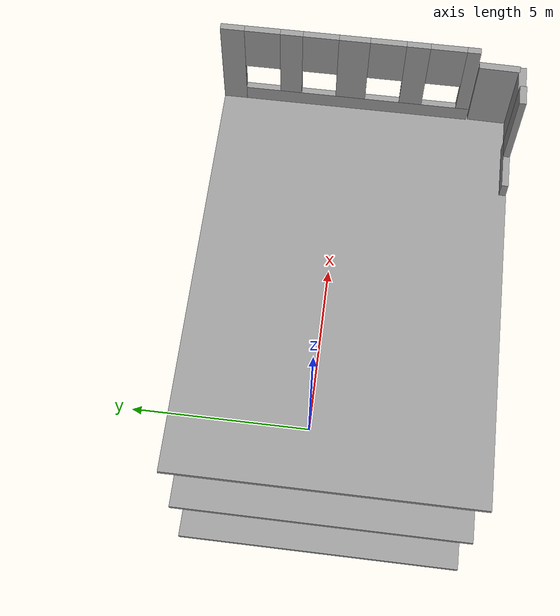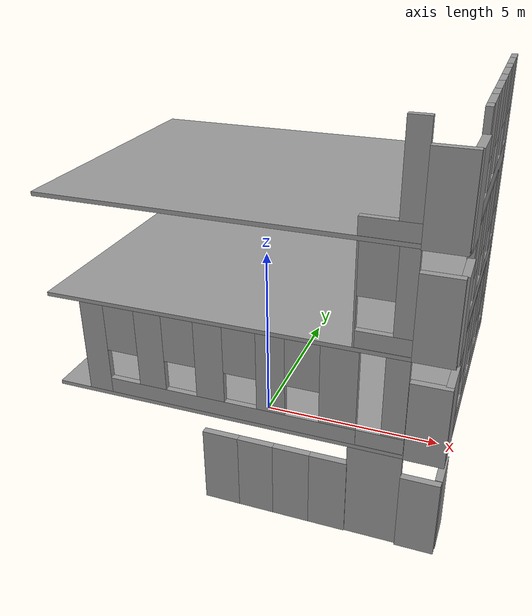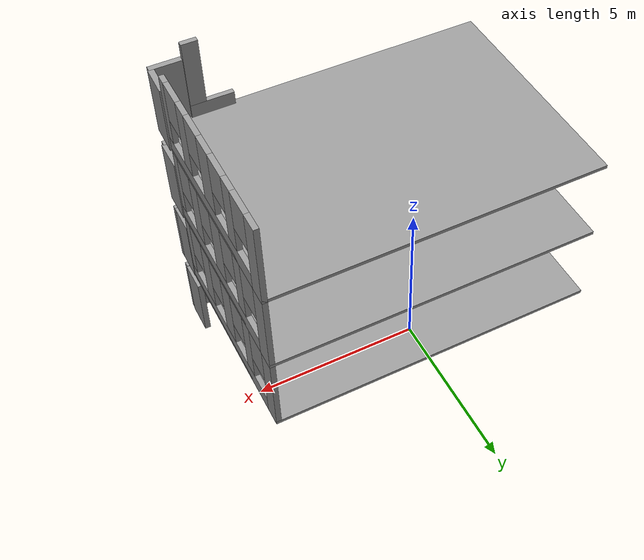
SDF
<sdf version="1.7">
 <model name="domitory">
  <pose>0.765108 -0.598707 0 0 -0 0</pose>
  <link name="Door_12">
   <collision name="Door_12_Collision">
    <geometry><box><size>0.9 0.17 2</size></box></geometry>
    <pose>0 0 1 0 -0 0</pose>
   </collision>
   <visual name="Door_12_Visual">
    <pose>0 0 1 0 -0 0</pose>
    <geometry><box><size>0.9 0.17 2</size></box></geometry>
    <material>
     <script><uri>file://media/materials/scripts/gazebo.material</uri><name>Gazebo/Grey</name></script>
    </material>
   </visual>
   <pose>4.35367 -3.32593 2.5 0 -0 0</pose>
  </link>
  <link name="Door_13">
   <collision name="Door_13_Collision">
    <geometry><box><size>0.9 0.17 2</size></box></geometry>
    <pose>0 0 1 0 -0 0</pose>
   </collision>
   <visual name="Door_13_Visual">
    <pose>0 0 1 0 -0 0</pose>
    <geometry><box><size>0.9 0.17 2</size></box></geometry>
    <material>
     <script><uri>file://media/materials/scripts/gazebo.material</uri><name>Gazebo/Grey</name></script>
    </material>
   </visual>
   <pose>4.71868 -2.83925 2.5 0 -0 1.56606</pose>
  </link>
  <link name="Door_16">
   <collision name="Door_16_Collision">
    <geometry><box><size>0.9 0.17 2</size></box></geometry>
    <pose>0 0 1 0 -0 0</pose>
   </collision>
   <visual name="Door_16_Visual">
    <pose>0 0 1 0 -0 0</pose>
    <geometry><box><size>0.9 0.17 2</size></box></geometry>
    <material>
     <script><uri>file://media/materials/scripts/gazebo.material</uri><name>Gazebo/Grey</name></script>
    </material>
   </visual>
   <pose>4.33718 -3.3042 5 0 -0 0</pose>
  </link>
  <link name="Door_17">
   <collision name="Door_17_Collision">
    <geometry><box><size>0.9 0.17 2</size></box></geometry>
    <pose>0 0 1 0 -0 0</pose>
   </collision>
   <visual name="Door_17_Visual">
    <pose>0 0 1 0 -0 0</pose>
    <geometry><box><size>0.9 0.17 2</size></box></geometry>
    <material>
     <script><uri>file://media/materials/scripts/gazebo.material</uri><name>Gazebo/Grey</name></script>
    </material>
   </visual>
   <pose>4.74951 -2.80136 5 0 -0 1.58063</pose>
  </link>
  <link name="Door_2">
   <collision name="Door_2_Collision">
    <geometry><box><size>0.9 0.17 2</size></box></geometry>
    <pose>0 0 1 0 -0 0</pose>
   </collision>
   <visual name="Door_2_Visual">
    <pose>0 0 1 0 -0 0</pose>
    <geometry><box><size>0.9 0.17 2</size></box></geometry>
    <material>
     <script><uri>file://media/materials/scripts/gazebo.material</uri><name>Gazebo/Grey</name></script>
    </material>
   </visual>
   <pose>-0.475108 -3.31129 0 0 -0 0</pose>
  </link>
  <link name="Door_20">
   <collision name="Door_20_Collision">
    <geometry><box><size>0.9 0.17 2</size></box></geometry>
    <pose>0 0 1 0 -0 0</pose>
   </collision>
   <visual name="Door_20_Visual">
    <pose>0 0 1 0 -0 0</pose>
    <geometry><box><size>0.9 0.17 2</size></box></geometry>
    <material>
     <script><uri>file://media/materials/scripts/gazebo.material</uri><name>Gazebo/Grey</name></script>
    </material>
   </visual>
   <pose>4.33688 -3.35533 7.5 0 -0 0</pose>
  </link>
  <link name="Door_21">
   <collision name="Door_21_Collision">
    <geometry><box><size>0.9 0.17 2</size></box></geometry>
    <pose>0 0 1 0 -0 0</pose>
   </collision>
   <visual name="Door_21_Visual">
    <pose>0 0 1 0 -0 0</pose>
    <geometry><box><size>0.9 0.17 2</size></box></geometry>
    <material>
     <script><uri>file://media/materials/scripts/gazebo.material</uri><name>Gazebo/Grey</name></script>
    </material>
   </visual>
   <pose>4.74144 -2.84964 7.5 0 -0 1.55325</pose>
  </link>
  <link name="Door_3">
   <collision name="Door_3_Collision">
    <geometry><box><size>0.9 0.17 2</size></box></geometry>
    <pose>0 0 1 0 -0 0</pose>
   </collision>
   <visual name="Door_3_Visual">
    <pose>0 0 1 0 -0 0</pose>
    <geometry><box><size>0.9 0.17 2</size></box></geometry>
    <material>
     <script><uri>file://media/materials/scripts/gazebo.material</uri><name>Gazebo/Grey</name></script>
    </material>
   </visual>
   <pose>0.414892 -3.31129 0 0 -0 0</pose>
  </link>
  <link name="Door_4">
   <collision name="Door_4_Collision">
    <geometry><box><size>0.9 0.17 2</size></box></geometry>
    <pose>0 0 1 0 -0 0</pose>
   </collision>
   <visual name="Door_4_Visual">
    <pose>0 0 1 0 -0 0</pose>
    <geometry><box><size>0.9 0.17 2</size></box></geometry>
    <material>
     <script><uri>file://media/materials/scripts/gazebo.material</uri><name>Gazebo/Grey</name></script>
    </material>
   </visual>
   <pose>1.30489 -3.31129 0 0 -0 0</pose>
  </link>
  <link name="Door_5">
   <collision name="Door_5_Collision">
    <geometry><box><size>0.9 0.17 2</size></box></geometry>
    <pose>0 0 1 0 -0 0</pose>
   </collision>
   <visual name="Door_5_Visual">
    <pose>0 0 1 0 -0 0</pose>
    <geometry><box><size>0.9 0.17 2</size></box></geometry>
    <material>
     <script><uri>file://media/materials/scripts/gazebo.material</uri><name>Gazebo/Grey</name></script>
    </material>
   </visual>
   <pose>2.20489 -3.31129 0 0 -0 0</pose>
  </link>
  <link name="Door_8">
   <collision name="Door_8_Collision">
    <geometry><box><size>0.9 0.17 2</size></box></geometry>
    <pose>0 0 1 0 -0 0</pose>
   </collision>
   <visual name="Door_8_Visual">
    <pose>0 0 1 0 -0 0</pose>
    <geometry><box><size>0.9 0.17 2</size></box></geometry>
    <material>
     <script><uri>file://media/materials/scripts/gazebo.material</uri><name>Gazebo/Grey</name></script>
    </material>
   </visual>
   <pose>4.33084 -3.34889 0 0 -0 0</pose>
  </link>
  <link name="Door_9">
   <collision name="Door_9_Collision">
    <geometry><box><size>0.9 0.17 2</size></box></geometry>
    <pose>0 0 1 0 -0 0</pose>
   </collision>
   <visual name="Door_9_Visual">
    <pose>0 0 1 0 -0 0</pose>
    <geometry><box><size>0.9 0.17 2</size></box></geometry>
    <material>
     <script><uri>file://media/materials/scripts/gazebo.material</uri><name>Gazebo/Grey</name></script>
    </material>
   </visual>
   <pose>4.71207 -2.79987 0 0 -0 1.57105</pose>
  </link>
  <link name="Floor_0">
   <collision name="Floor_0_Collision">
    <geometry><box><size>9.59773 6.77259 0.1</size></box></geometry>
    <pose>0 0 0.05 0 -0 0</pose>
   </collision>
   <visual name="Floor_0_Visual">
    <pose>0 0 0.05 0 -0 0</pose>
    <geometry><box><size>9.59773 6.77259 0.1</size></box></geometry>
    <material>
     <script><uri>file://media/materials/scripts/gazebo.material</uri><name>Gazebo/Grey</name></script>
     <ambient>1 1 1 1</ambient>
    </material>
    <meta><layer>1</layer></meta>
   </visual>
   <pose>-0 -0 2.5 0 -0 0</pose>
  </link>
  <link name="Floor_1">
   <collision name="Floor_1_Collision">
    <geometry><box><size>9.59773 6.77259 0.1</size></box></geometry>
    <pose>0 0 0.05 0 -0 0</pose>
   </collision>
   <visual name="Floor_1_Visual">
    <pose>0 0 0.05 0 -0 0</pose>
    <geometry><box><size>9.59773 6.77259 0.1</size></box></geometry>
    <material>
     <script><uri>file://media/materials/scripts/gazebo.material</uri><name>Gazebo/Grey</name></script>
     <ambient>1 1 1 1</ambient>
    </material>
    <meta><layer>2</layer></meta>
   </visual>
   <pose>-0 -0 5 0 -0 0</pose>
  </link>
  <link name="Floor_2">
   <collision name="Floor_2_Collision">
    <geometry><box><size>9.59773 6.77259 0.1</size></box></geometry>
    <pose>0 0 0.05 0 -0 0</pose>
   </collision>
   <visual name="Floor_2_Visual">
    <pose>0 0 0.05 0 -0 0</pose>
    <geometry><box><size>9.59773 6.77259 0.1</size></box></geometry>
    <material>
     <script><uri>file://media/materials/scripts/gazebo.material</uri><name>Gazebo/Grey</name></script>
     <ambient>1 1 1 1</ambient>
    </material>
    <meta><layer>3</layer></meta>
   </visual>
   <pose>-0 -0 7.5 0 -0 0</pose>
  </link>
  <link name="Wall_12">
   <pose>4.72386 0.511293 2.5 0 -0 -1.5708</pose>
   <visual name="Wall_12_Visual_0">
    <pose>-2.61219 0 1.25 0 -0 0</pose>
    <geometry><box><size>0.525622 0.15 2.5</size></box></geometry>
    <material>
     <script><uri>file://media/materials/scripts/gazebo.material</uri><name>Gazebo/Grey</name></script>
     <ambient>1 1 1 1</ambient>
    </material>
    <meta><layer>1</layer></meta>
   </visual>
   <collision name="Wall_12_Collision_0">
    <geometry><box><size>0.525622 0.15 2.5</size></box></geometry>
    <pose>-2.61219 0 1.25 0 -0 0</pose>
   </collision>
   <visual name="Wall_12_Visual_1">
    <pose>0.262811 0 0.25 0 -0 0</pose>
    <geometry><box><size>5.22438 0.15 0.5</size></box></geometry>
    <material>
     <script><uri>file://media/materials/scripts/gazebo.material</uri><name>Gazebo/Grey</name></script>
     <ambient>1 1 1 1</ambient>
    </material>
    <meta><layer>1</layer></meta>
   </visual>
   <collision name="Wall_12_Collision_1">
    <geometry><box><size>5.22438 0.15 0.5</size></box></geometry>
    <pose>0.262811 0 0.25 0 -0 0</pose>
   </collision>
   <visual name="Wall_12_Visual_2">
    <pose>-1.31329 0 1.5 0 -0 0</pose>
    <geometry><box><size>0.472183 0.15 2</size></box></geometry>
    <material>
     <script><uri>file://media/materials/scripts/gazebo.material</uri><name>Gazebo/Grey</name></script>
     <ambient>1 1 1 1</ambient>
    </material>
    <meta><layer>1</layer></meta>
   </visual>
   <collision name="Wall_12_Collision_2">
    <geometry><box><size>0.472183 0.15 2</size></box></geometry>
    <pose>-1.31329 0 1.5 0 -0 0</pose>
   </collision>
   <visual name="Wall_12_Visual_3">
    <pose>0.039855 0 1.5 0 -0 0</pose>
    <geometry><box><size>0.634098 0.15 2</size></box></geometry>
    <material>
     <script><uri>file://media/materials/scripts/gazebo.material</uri><name>Gazebo/Grey</name></script>
     <ambient>1 1 1 1</ambient>
    </material>
    <meta><layer>1</layer></meta>
   </visual>
   <collision name="Wall_12_Collision_3">
    <geometry><box><size>0.634098 0.15 2</size></box></geometry>
    <pose>0.039855 0 1.5 0 -0 0</pose>
   </collision>
   <visual name="Wall_12_Visual_4">
    <pose>1.45082 0 1.5 0 -0 0</pose>
    <geometry><box><size>0.587836 0.15 2</size></box></geometry>
    <material>
     <script><uri>file://media/materials/scripts/gazebo.material</uri><name>Gazebo/Grey</name></script>
     <ambient>1 1 1 1</ambient>
    </material>
    <meta><layer>1</layer></meta>
   </visual>
   <collision name="Wall_12_Collision_4">
    <geometry><box><size>0.587836 0.15 2</size></box></geometry>
    <pose>1.45082 0 1.5 0 -0 0</pose>
   </collision>
   <visual name="Wall_12_Visual_5">
    <pose>2.70987 0 1.5 0 -0 0</pose>
    <geometry><box><size>0.33026 0.15 2</size></box></geometry>
    <material>
     <script><uri>file://media/materials/scripts/gazebo.material</uri><name>Gazebo/Grey</name></script>
     <ambient>1 1 1 1</ambient>
    </material>
    <meta><layer>1</layer></meta>
   </visual>
   <collision name="Wall_12_Collision_5">
    <geometry><box><size>0.33026 0.15 2</size></box></geometry>
    <pose>2.70987 0 1.5 0 -0 0</pose>
   </collision>
   <visual name="Wall_12_Visual_6">
    <pose>-1.94938 0 1.9 0 -0 0</pose>
    <geometry><box><size>0.8 0.15 1.2</size></box></geometry>
    <material>
     <script><uri>file://media/materials/scripts/gazebo.material</uri><name>Gazebo/Grey</name></script>
     <ambient>1 1 1 1</ambient>
    </material>
    <meta><layer>1</layer></meta>
   </visual>
   <collision name="Wall_12_Collision_6">
    <geometry><box><size>0.8 0.15 1.2</size></box></geometry>
    <pose>-1.94938 0 1.9 0 -0 0</pose>
   </collision>
   <visual name="Wall_12_Visual_7">
    <pose>-0.677194 0 1.9 0 -0 0</pose>
    <geometry><box><size>0.8 0.15 1.2</size></box></geometry>
    <material>
     <script><uri>file://media/materials/scripts/gazebo.material</uri><name>Gazebo/Grey</name></script>
     <ambient>1 1 1 1</ambient>
    </material>
    <meta><layer>1</layer></meta>
   </visual>
   <collision name="Wall_12_Collision_7">
    <geometry><box><size>0.8 0.15 1.2</size></box></geometry>
    <pose>-0.677194 0 1.9 0 -0 0</pose>
   </collision>
   <visual name="Wall_12_Visual_8">
    <pose>0.756903 0 1.9 0 -0 0</pose>
    <geometry><box><size>0.8 0.15 1.2</size></box></geometry>
    <material>
     <script><uri>file://media/materials/scripts/gazebo.material</uri><name>Gazebo/Grey</name></script>
     <ambient>1 1 1 1</ambient>
    </material>
    <meta><layer>1</layer></meta>
   </visual>
   <collision name="Wall_12_Collision_8">
    <geometry><box><size>0.8 0.15 1.2</size></box></geometry>
    <pose>0.756903 0 1.9 0 -0 0</pose>
   </collision>
   <visual name="Wall_12_Visual_9">
    <pose>2.14474 0 1.9 0 -0 0</pose>
    <geometry><box><size>0.8 0.15 1.2</size></box></geometry>
    <material>
     <script><uri>file://media/materials/scripts/gazebo.material</uri><name>Gazebo/Grey</name></script>
     <ambient>1 1 1 1</ambient>
    </material>
    <meta><layer>1</layer></meta>
   </visual>
   <collision name="Wall_12_Collision_9">
    <geometry><box><size>0.8 0.15 1.2</size></box></geometry>
    <pose>2.14474 0 1.9 0 -0 0</pose>
   </collision>
  </link>
  <link name="Wall_14">
   <pose>3.26489 -3.30129 5 0 -0 0</pose>
   <visual name="Wall_14_Visual_0">
    <pose>-0.604905 0 1.25 0 -0 0</pose>
    <geometry><box><size>0.04019 0.15 2.5</size></box></geometry>
    <material>
     <script><uri>file://media/materials/scripts/gazebo.material</uri><name>Gazebo/Grey</name></script>
     <ambient>1 1 1 1</ambient>
    </material>
    <meta><layer>2</layer></meta>
   </visual>
   <collision name="Wall_14_Collision_0">
    <geometry><box><size>0.04019 0.15 2.5</size></box></geometry>
    <pose>-0.604905 0 1.25 0 -0 0</pose>
   </collision>
   <visual name="Wall_14_Visual_1">
    <pose>0.020095 0 0.25 0 -0 0</pose>
    <geometry><box><size>1.20981 0.15 0.5</size></box></geometry>
    <material>
     <script><uri>file://media/materials/scripts/gazebo.material</uri><name>Gazebo/Grey</name></script>
     <ambient>1 1 1 1</ambient>
    </material>
    <meta><layer>2</layer></meta>
   </visual>
   <collision name="Wall_14_Collision_1">
    <geometry><box><size>1.20981 0.15 0.5</size></box></geometry>
    <pose>0.020095 0 0.25 0 -0 0</pose>
   </collision>
   <visual name="Wall_14_Visual_2">
    <pose>0.420095 0 1.5 0 -0 0</pose>
    <geometry><box><size>0.40981 0.15 2</size></box></geometry>
    <material>
     <script><uri>file://media/materials/scripts/gazebo.material</uri><name>Gazebo/Grey</name></script>
     <ambient>1 1 1 1</ambient>
    </material>
    <meta><layer>2</layer></meta>
   </visual>
   <collision name="Wall_14_Collision_2">
    <geometry><box><size>0.40981 0.15 2</size></box></geometry>
    <pose>0.420095 0 1.5 0 -0 0</pose>
   </collision>
   <visual name="Wall_14_Visual_3">
    <pose>-0.18481 0 1.9 0 -0 0</pose>
    <geometry><box><size>0.8 0.15 1.2</size></box></geometry>
    <material>
     <script><uri>file://media/materials/scripts/gazebo.material</uri><name>Gazebo/Grey</name></script>
     <ambient>1 1 1 1</ambient>
    </material>
    <meta><layer>2</layer></meta>
   </visual>
   <collision name="Wall_14_Collision_3">
    <geometry><box><size>0.8 0.15 1.2</size></box></geometry>
    <pose>-0.18481 0 1.9 0 -0 0</pose>
   </collision>
  </link>
  <link name="Wall_17">
   <pose>4.72386 0.511293 5 0 -0 -1.5708</pose>
   <visual name="Wall_17_Visual_0">
    <pose>-2.59682 0 1.25 0 -0 0</pose>
    <geometry><box><size>0.556359 0.15 2.5</size></box></geometry>
    <material>
     <script><uri>file://media/materials/scripts/gazebo.material</uri><name>Gazebo/Grey</name></script>
     <ambient>1 1 1 1</ambient>
    </material>
    <meta><layer>2</layer></meta>
   </visual>
   <collision name="Wall_17_Collision_0">
    <geometry><box><size>0.556359 0.15 2.5</size></box></geometry>
    <pose>-2.59682 0 1.25 0 -0 0</pose>
   </collision>
   <visual name="Wall_17_Visual_1">
    <pose>0.278179 0 0.25 0 -0 0</pose>
    <geometry><box><size>5.19364 0.15 0.5</size></box></geometry>
    <material>
     <script><uri>file://media/materials/scripts/gazebo.material</uri><name>Gazebo/Grey</name></script>
     <ambient>1 1 1 1</ambient>
    </material>
    <meta><layer>2</layer></meta>
   </visual>
   <collision name="Wall_17_Collision_1">
    <geometry><box><size>5.19364 0.15 0.5</size></box></geometry>
    <pose>0.278179 0 0.25 0 -0 0</pose>
   </collision>
   <visual name="Wall_17_Visual_2">
    <pose>-1.29154 0 1.5 0 -0 0</pose>
    <geometry><box><size>0.454199 0.15 2</size></box></geometry>
    <material>
     <script><uri>file://media/materials/scripts/gazebo.material</uri><name>Gazebo/Grey</name></script>
     <ambient>1 1 1 1</ambient>
    </material>
    <meta><layer>2</layer></meta>
   </visual>
   <collision name="Wall_17_Collision_2">
    <geometry><box><size>0.454199 0.15 2</size></box></geometry>
    <pose>-1.29154 0 1.5 0 -0 0</pose>
   </collision>
   <visual name="Wall_17_Visual_3">
    <pose>0.067005 0 1.5 0 -0 0</pose>
    <geometry><box><size>0.662894 0.15 2</size></box></geometry>
    <material>
     <script><uri>file://media/materials/scripts/gazebo.material</uri><name>Gazebo/Grey</name></script>
     <ambient>1 1 1 1</ambient>
    </material>
    <meta><layer>2</layer></meta>
   </visual>
   <collision name="Wall_17_Collision_3">
    <geometry><box><size>0.662894 0.15 2</size></box></geometry>
    <pose>0.067005 0 1.5 0 -0 0</pose>
   </collision>
   <visual name="Wall_17_Visual_4">
    <pose>1.47728 0 1.5 0 -0 0</pose>
    <geometry><box><size>0.557666 0.15 2</size></box></geometry>
    <material>
     <script><uri>file://media/materials/scripts/gazebo.material</uri><name>Gazebo/Grey</name></script>
     <ambient>1 1 1 1</ambient>
    </material>
    <meta><layer>2</layer></meta>
   </visual>
   <collision name="Wall_17_Collision_4">
    <geometry><box><size>0.557666 0.15 2</size></box></geometry>
    <pose>1.47728 0 1.5 0 -0 0</pose>
   </collision>
   <visual name="Wall_17_Visual_5">
    <pose>2.71556 0 1.5 0 -0 0</pose>
    <geometry><box><size>0.318882 0.15 2</size></box></geometry>
    <material>
     <script><uri>file://media/materials/scripts/gazebo.material</uri><name>Gazebo/Grey</name></script>
     <ambient>1 1 1 1</ambient>
    </material>
    <meta><layer>2</layer></meta>
   </visual>
   <collision name="Wall_17_Collision_5">
    <geometry><box><size>0.318882 0.15 2</size></box></geometry>
    <pose>2.71556 0 1.5 0 -0 0</pose>
   </collision>
   <visual name="Wall_17_Visual_6">
    <pose>-1.91864 0 1.9 0 -0 0</pose>
    <geometry><box><size>0.8 0.15 1.2</size></box></geometry>
    <material>
     <script><uri>file://media/materials/scripts/gazebo.material</uri><name>Gazebo/Grey</name></script>
     <ambient>1 1 1 1</ambient>
    </material>
    <meta><layer>2</layer></meta>
   </visual>
   <collision name="Wall_17_Collision_6">
    <geometry><box><size>0.8 0.15 1.2</size></box></geometry>
    <pose>-1.91864 0 1.9 0 -0 0</pose>
   </collision>
   <visual name="Wall_17_Visual_7">
    <pose>-0.664442 0 1.9 0 -0 0</pose>
    <geometry><box><size>0.8 0.15 1.2</size></box></geometry>
    <material>
     <script><uri>file://media/materials/scripts/gazebo.material</uri><name>Gazebo/Grey</name></script>
     <ambient>1 1 1 1</ambient>
    </material>
    <meta><layer>2</layer></meta>
   </visual>
   <collision name="Wall_17_Collision_7">
    <geometry><box><size>0.8 0.15 1.2</size></box></geometry>
    <pose>-0.664442 0 1.9 0 -0 0</pose>
   </collision>
   <visual name="Wall_17_Visual_8">
    <pose>0.798452 0 1.9 0 -0 0</pose>
    <geometry><box><size>0.8 0.15 1.2</size></box></geometry>
    <material>
     <script><uri>file://media/materials/scripts/gazebo.material</uri><name>Gazebo/Grey</name></script>
     <ambient>1 1 1 1</ambient>
    </material>
    <meta><layer>2</layer></meta>
   </visual>
   <collision name="Wall_17_Collision_8">
    <geometry><box><size>0.8 0.15 1.2</size></box></geometry>
    <pose>0.798452 0 1.9 0 -0 0</pose>
   </collision>
   <visual name="Wall_17_Visual_9">
    <pose>2.15612 0 1.9 0 -0 0</pose>
    <geometry><box><size>0.8 0.15 1.2</size></box></geometry>
    <material>
     <script><uri>file://media/materials/scripts/gazebo.material</uri><name>Gazebo/Grey</name></script>
     <ambient>1 1 1 1</ambient>
    </material>
    <meta><layer>2</layer></meta>
   </visual>
   <collision name="Wall_17_Collision_9">
    <geometry><box><size>0.8 0.15 1.2</size></box></geometry>
    <pose>2.15612 0 1.9 0 -0 0</pose>
   </collision>
  </link>
  <link name="Wall_19">
   <pose>3.26489 -3.30129 7.5 0 -0 0</pose>
   <visual name="Wall_19_Visual_0">
    <pose>0 0 0.25 0 -0 0</pose>
    <geometry><box><size>1.25 0.15 0.5</size></box></geometry>
    <material>
     <script><uri>file://media/materials/scripts/gazebo.material</uri><name>Gazebo/Grey</name></script>
     <ambient>1 1 1 1</ambient>
    </material>
    <meta><layer>3</layer></meta>
   </visual>
   <collision name="Wall_19_Collision_0">
    <geometry><box><size>1.25 0.15 0.5</size></box></geometry>
    <pose>0 0 0.25 0 -0 0</pose>
   </collision>
   <visual name="Wall_19_Visual_1">
    <pose>0.394497 0 1.5 0 -0 0</pose>
    <geometry><box><size>0.461005 0.15 2</size></box></geometry>
    <material>
     <script><uri>file://media/materials/scripts/gazebo.material</uri><name>Gazebo/Grey</name></script>
     <ambient>1 1 1 1</ambient>
    </material>
    <meta><layer>3</layer></meta>
   </visual>
   <collision name="Wall_19_Collision_1">
    <geometry><box><size>0.461005 0.15 2</size></box></geometry>
    <pose>0.394497 0 1.5 0 -0 0</pose>
   </collision>
  </link>
  <link name="Wall_2">
   <collision name="Wall_2_Collision">
    <geometry><box><size>1.25 0.15 2.5</size></box></geometry>
    <pose>0 0 1.25 0 -0 0</pose>
   </collision>
   <visual name="Wall_2_Visual">
    <pose>0 0 1.25 0 -0 0</pose>
    <geometry><box><size>1.25 0.15 2.5</size></box></geometry>
    <material>
     <script><uri>file://media/materials/scripts/gazebo.material</uri><name>Gazebo/Grey</name></script>
     <ambient>1 1 1 1</ambient>
    </material>
    <meta><layer>0</layer></meta>
   </visual>
   <pose>3.26489 -3.30129 0 0 -0 0</pose>
  </link>
  <link name="Wall_22">
   <pose>4.72386 0.511293 7.5 0 -0 -1.5708</pose>
   <visual name="Wall_22_Visual_0">
    <pose>-2.60693 0 1.25 0 -0 0</pose>
    <geometry><box><size>0.536145 0.15 2.5</size></box></geometry>
    <material>
     <script><uri>file://media/materials/scripts/gazebo.material</uri><name>Gazebo/Grey</name></script>
     <ambient>1 1 1 1</ambient>
    </material>
    <meta><layer>3</layer></meta>
   </visual>
   <collision name="Wall_22_Collision_0">
    <geometry><box><size>0.536145 0.15 2.5</size></box></geometry>
    <pose>-2.60693 0 1.25 0 -0 0</pose>
   </collision>
   <visual name="Wall_22_Visual_1">
    <pose>0.268073 0 0.25 0 -0 0</pose>
    <geometry><box><size>5.21385 0.15 0.5</size></box></geometry>
    <material>
     <script><uri>file://media/materials/scripts/gazebo.material</uri><name>Gazebo/Grey</name></script>
     <ambient>1 1 1 1</ambient>
    </material>
    <meta><layer>3</layer></meta>
   </visual>
   <collision name="Wall_22_Collision_1">
    <geometry><box><size>5.21385 0.15 0.5</size></box></geometry>
    <pose>0.268073 0 0.25 0 -0 0</pose>
   </collision>
   <visual name="Wall_22_Visual_2">
    <pose>-1.28752 0 1.5 0 -0 0</pose>
    <geometry><box><size>0.50267 0.15 2</size></box></geometry>
    <material>
     <script><uri>file://media/materials/scripts/gazebo.material</uri><name>Gazebo/Grey</name></script>
     <ambient>1 1 1 1</ambient>
    </material>
    <meta><layer>3</layer></meta>
   </visual>
   <collision name="Wall_22_Collision_2">
    <geometry><box><size>0.50267 0.15 2</size></box></geometry>
    <pose>-1.28752 0 1.5 0 -0 0</pose>
   </collision>
   <visual name="Wall_22_Visual_3">
    <pose>0.108197 0 1.5 0 -0 0</pose>
    <geometry><box><size>0.688765 0.15 2</size></box></geometry>
    <material>
     <script><uri>file://media/materials/scripts/gazebo.material</uri><name>Gazebo/Grey</name></script>
     <ambient>1 1 1 1</ambient>
    </material>
    <meta><layer>3</layer></meta>
   </visual>
   <collision name="Wall_22_Collision_3">
    <geometry><box><size>0.688765 0.15 2</size></box></geometry>
    <pose>0.108197 0 1.5 0 -0 0</pose>
   </collision>
   <visual name="Wall_22_Visual_4">
    <pose>1.51555 0 1.5 0 -0 0</pose>
    <geometry><box><size>0.525931 0.15 2</size></box></geometry>
    <material>
     <script><uri>file://media/materials/scripts/gazebo.material</uri><name>Gazebo/Grey</name></script>
     <ambient>1 1 1 1</ambient>
    </material>
    <meta><layer>3</layer></meta>
   </visual>
   <collision name="Wall_22_Collision_4">
    <geometry><box><size>0.525931 0.15 2</size></box></geometry>
    <pose>1.51555 0 1.5 0 -0 0</pose>
   </collision>
   <visual name="Wall_22_Visual_5">
    <pose>2.72676 0 1.5 0 -0 0</pose>
    <geometry><box><size>0.296488 0.15 2</size></box></geometry>
    <material>
     <script><uri>file://media/materials/scripts/gazebo.material</uri><name>Gazebo/Grey</name></script>
     <ambient>1 1 1 1</ambient>
    </material>
    <meta><layer>3</layer></meta>
   </visual>
   <collision name="Wall_22_Collision_5">
    <geometry><box><size>0.296488 0.15 2</size></box></geometry>
    <pose>2.72676 0 1.5 0 -0 0</pose>
   </collision>
   <visual name="Wall_22_Visual_6">
    <pose>-1.93885 0 1.9 0 -0 0</pose>
    <geometry><box><size>0.8 0.15 1.2</size></box></geometry>
    <material>
     <script><uri>file://media/materials/scripts/gazebo.material</uri><name>Gazebo/Grey</name></script>
     <ambient>1 1 1 1</ambient>
    </material>
    <meta><layer>3</layer></meta>
   </visual>
   <collision name="Wall_22_Collision_6">
    <geometry><box><size>0.8 0.15 1.2</size></box></geometry>
    <pose>-1.93885 0 1.9 0 -0 0</pose>
   </collision>
   <visual name="Wall_22_Visual_7">
    <pose>-0.636185 0 1.9 0 -0 0</pose>
    <geometry><box><size>0.8 0.15 1.2</size></box></geometry>
    <material>
     <script><uri>file://media/materials/scripts/gazebo.material</uri><name>Gazebo/Grey</name></script>
     <ambient>1 1 1 1</ambient>
    </material>
    <meta><layer>3</layer></meta>
   </visual>
   <collision name="Wall_22_Collision_7">
    <geometry><box><size>0.8 0.15 1.2</size></box></geometry>
    <pose>-0.636185 0 1.9 0 -0 0</pose>
   </collision>
   <visual name="Wall_22_Visual_8">
    <pose>0.85258 0 1.9 0 -0 0</pose>
    <geometry><box><size>0.8 0.15 1.2</size></box></geometry>
    <material>
     <script><uri>file://media/materials/scripts/gazebo.material</uri><name>Gazebo/Grey</name></script>
     <ambient>1 1 1 1</ambient>
    </material>
    <meta><layer>3</layer></meta>
   </visual>
   <collision name="Wall_22_Collision_8">
    <geometry><box><size>0.8 0.15 1.2</size></box></geometry>
    <pose>0.85258 0 1.9 0 -0 0</pose>
   </collision>
   <visual name="Wall_22_Visual_9">
    <pose>2.17851 0 1.9 0 -0 0</pose>
    <geometry><box><size>0.8 0.15 1.2</size></box></geometry>
    <material>
     <script><uri>file://media/materials/scripts/gazebo.material</uri><name>Gazebo/Grey</name></script>
     <ambient>1 1 1 1</ambient>
    </material>
    <meta><layer>3</layer></meta>
   </visual>
   <collision name="Wall_22_Collision_9">
    <geometry><box><size>0.8 0.15 1.2</size></box></geometry>
    <pose>2.17851 0 1.9 0 -0 0</pose>
   </collision>
  </link>
  <link name="Wall_8">
   <pose>-0.565108 -3.31129 2.5 0 -0 0</pose>
   <visual name="Wall_8_Visual_0">
    <pose>-3.06522 0 1.25 0 -0 0</pose>
    <geometry><box><size>0.619568 0.15 2.5</size></box></geometry>
    <material>
     <script><uri>file://media/materials/scripts/gazebo.material</uri><name>Gazebo/Grey</name></script>
     <ambient>1 1 1 1</ambient>
    </material>
    <meta><layer>1</layer></meta>
   </visual>
   <collision name="Wall_8_Collision_0">
    <geometry><box><size>0.619568 0.15 2.5</size></box></geometry>
    <pose>-3.06522 0 1.25 0 -0 0</pose>
   </collision>
   <visual name="Wall_8_Visual_1">
    <pose>0.309784 0 0.25 0 -0 0</pose>
    <geometry><box><size>6.13043 0.15 0.5</size></box></geometry>
    <material>
     <script><uri>file://media/materials/scripts/gazebo.material</uri><name>Gazebo/Grey</name></script>
     <ambient>1 1 1 1</ambient>
    </material>
    <meta><layer>1</layer></meta>
   </visual>
   <collision name="Wall_8_Collision_1">
    <geometry><box><size>6.13043 0.15 0.5</size></box></geometry>
    <pose>0.309784 0 0.25 0 -0 0</pose>
   </collision>
   <visual name="Wall_8_Visual_2">
    <pose>-1.60665 0 1.5 0 -0 0</pose>
    <geometry><box><size>0.697553 0.15 2</size></box></geometry>
    <material>
     <script><uri>file://media/materials/scripts/gazebo.material</uri><name>Gazebo/Grey</name></script>
     <ambient>1 1 1 1</ambient>
    </material>
    <meta><layer>1</layer></meta>
   </visual>
   <collision name="Wall_8_Collision_2">
    <geometry><box><size>0.697553 0.15 2</size></box></geometry>
    <pose>-1.60665 0 1.5 0 -0 0</pose>
   </collision>
   <visual name="Wall_8_Visual_3">
    <pose>-0.106134 0 1.5 0 -0 0</pose>
    <geometry><box><size>0.703489 0.15 2</size></box></geometry>
    <material>
     <script><uri>file://media/materials/scripts/gazebo.material</uri><name>Gazebo/Grey</name></script>
     <ambient>1 1 1 1</ambient>
    </material>
    <meta><layer>1</layer></meta>
   </visual>
   <collision name="Wall_8_Collision_3">
    <geometry><box><size>0.703489 0.15 2</size></box></geometry>
    <pose>-0.106134 0 1.5 0 -0 0</pose>
   </collision>
   <visual name="Wall_8_Visual_4">
    <pose>1.38579 0 1.5 0 -0 0</pose>
    <geometry><box><size>0.680359 0.15 2</size></box></geometry>
    <material>
     <script><uri>file://media/materials/scripts/gazebo.material</uri><name>Gazebo/Grey</name></script>
     <ambient>1 1 1 1</ambient>
    </material>
    <meta><layer>1</layer></meta>
   </visual>
   <collision name="Wall_8_Collision_4">
    <geometry><box><size>0.680359 0.15 2</size></box></geometry>
    <pose>1.38579 0 1.5 0 -0 0</pose>
   </collision>
   <visual name="Wall_8_Visual_5">
    <pose>2.95049 0 1.5 0 -0 0</pose>
    <geometry><box><size>0.84903 0.15 2</size></box></geometry>
    <material>
     <script><uri>file://media/materials/scripts/gazebo.material</uri><name>Gazebo/Grey</name></script>
     <ambient>1 1 1 1</ambient>
    </material>
    <meta><layer>1</layer></meta>
   </visual>
   <collision name="Wall_8_Collision_5">
    <geometry><box><size>0.84903 0.15 2</size></box></geometry>
    <pose>2.95049 0 1.5 0 -0 0</pose>
   </collision>
   <visual name="Wall_8_Visual_6">
    <pose>-2.35543 0 1.9 0 -0 0</pose>
    <geometry><box><size>0.8 0.15 1.2</size></box></geometry>
    <material>
     <script><uri>file://media/materials/scripts/gazebo.material</uri><name>Gazebo/Grey</name></script>
     <ambient>1 1 1 1</ambient>
    </material>
    <meta><layer>1</layer></meta>
   </visual>
   <collision name="Wall_8_Collision_6">
    <geometry><box><size>0.8 0.15 1.2</size></box></geometry>
    <pose>-2.35543 0 1.9 0 -0 0</pose>
   </collision>
   <visual name="Wall_8_Visual_7">
    <pose>-0.857879 0 1.9 0 -0 0</pose>
    <geometry><box><size>0.8 0.15 1.2</size></box></geometry>
    <material>
     <script><uri>file://media/materials/scripts/gazebo.material</uri><name>Gazebo/Grey</name></script>
     <ambient>1 1 1 1</ambient>
    </material>
    <meta><layer>1</layer></meta>
   </visual>
   <collision name="Wall_8_Collision_7">
    <geometry><box><size>0.8 0.15 1.2</size></box></geometry>
    <pose>-0.857879 0 1.9 0 -0 0</pose>
   </collision>
   <visual name="Wall_8_Visual_8">
    <pose>0.645611 0 1.9 0 -0 0</pose>
    <geometry><box><size>0.8 0.15 1.2</size></box></geometry>
    <material>
     <script><uri>file://media/materials/scripts/gazebo.material</uri><name>Gazebo/Grey</name></script>
     <ambient>1 1 1 1</ambient>
    </material>
    <meta><layer>1</layer></meta>
   </visual>
   <collision name="Wall_8_Collision_8">
    <geometry><box><size>0.8 0.15 1.2</size></box></geometry>
    <pose>0.645611 0 1.9 0 -0 0</pose>
   </collision>
   <visual name="Wall_8_Visual_9">
    <pose>2.12597 0 1.9 0 -0 0</pose>
    <geometry><box><size>0.8 0.15 1.2</size></box></geometry>
    <material>
     <script><uri>file://media/materials/scripts/gazebo.material</uri><name>Gazebo/Grey</name></script>
     <ambient>1 1 1 1</ambient>
    </material>
    <meta><layer>1</layer></meta>
   </visual>
   <collision name="Wall_8_Collision_9">
    <geometry><box><size>0.8 0.15 1.2</size></box></geometry>
    <pose>2.12597 0 1.9 0 -0 0</pose>
   </collision>
  </link>
  <link name="Wall_9">
   <pose>3.26489 -3.30129 2.5 0 -0 0</pose>
   <visual name="Wall_9_Visual_0">
    <pose>0 0 0.25 0 -0 0</pose>
    <geometry><box><size>1.25 0.15 0.5</size></box></geometry>
    <material>
     <script><uri>file://media/materials/scripts/gazebo.material</uri><name>Gazebo/Grey</name></script>
     <ambient>1 1 1 1</ambient>
    </material>
    <meta><layer>1</layer></meta>
   </visual>
   <collision name="Wall_9_Collision_0">
    <geometry><box><size>1.25 0.15 0.5</size></box></geometry>
    <pose>0 0 0.25 0 -0 0</pose>
   </collision>
   <visual name="Wall_9_Visual_1">
    <pose>0.365968 0 1.5 0 -0 0</pose>
    <geometry><box><size>0.518064 0.15 2</size></box></geometry>
    <material>
     <script><uri>file://media/materials/scripts/gazebo.material</uri><name>Gazebo/Grey</name></script>
     <ambient>1 1 1 1</ambient>
    </material>
    <meta><layer>1</layer></meta>
   </visual>
   <collision name="Wall_9_Collision_1">
    <geometry><box><size>0.518064 0.15 2</size></box></geometry>
    <pose>0.365968 0 1.5 0 -0 0</pose>
   </collision>
  </link>
  <static>1</static>
 </model>
</sdf>
